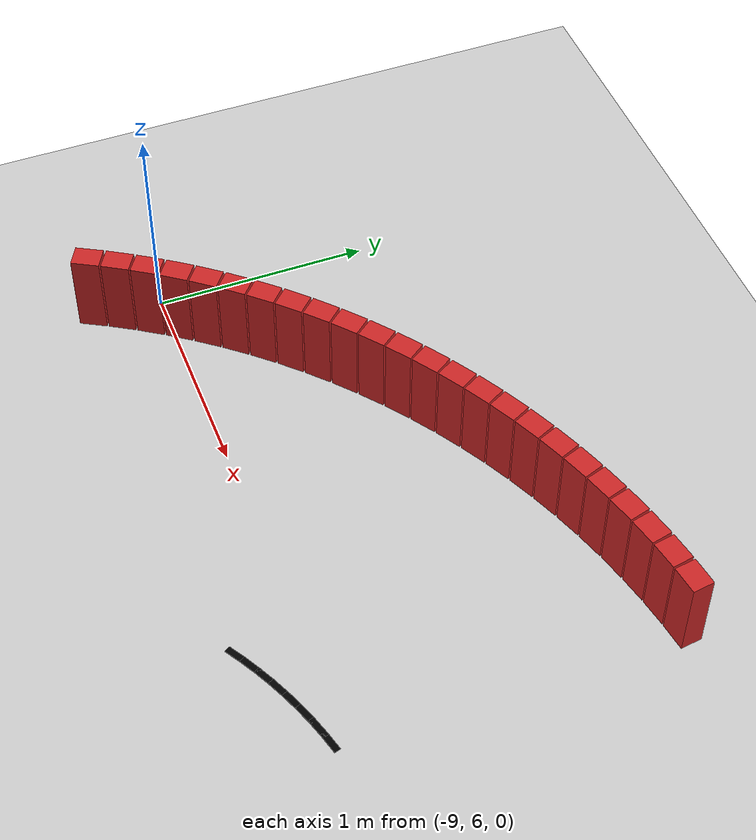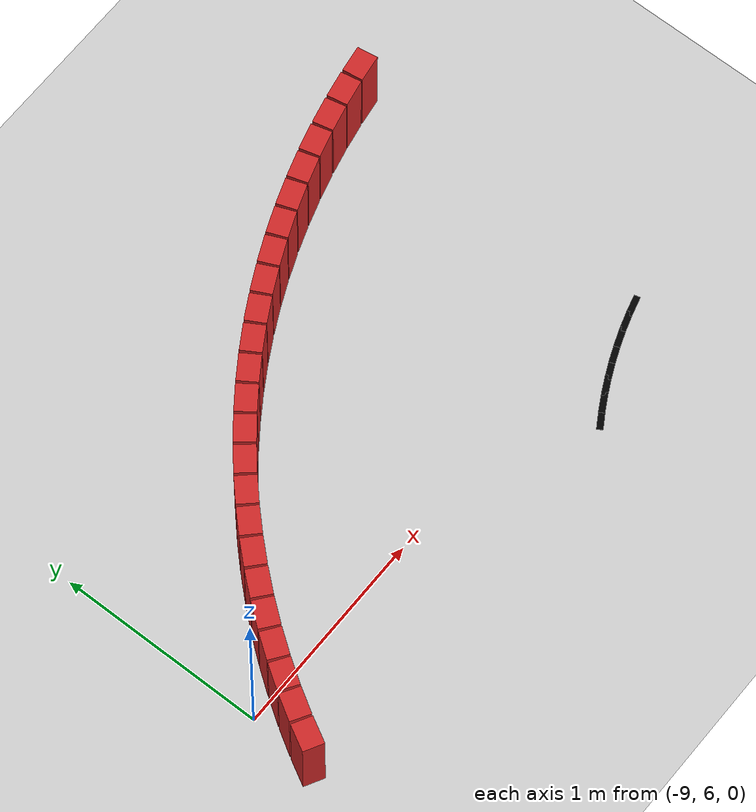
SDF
<sdf version="1.6">
 <world name="new_race_track">
  <include><uri>model://ground_plane</uri></include>
  <include><uri>model://sun</uri></include>
  <model name="race_track">
   <static>true</static>
   <link name="wall_link_787">
    <collision name="c"><geometry><box><size>0.1305 0.1 0.4</size></box></geometry></collision>
    <visual name="v">
     <geometry><box><size>0.1305 0.1 0.4</size></box></geometry>
     <material><ambient>0.8 0.15 0.15 1</ambient><diffuse>0.8 0.15 0.15 1</diffuse></material>
    </visual>
    <pose>-6.4538 7.4649 0.200 0 0 -3.0006</pose>
   </link>
   <link name="wall_link_788">
    <collision name="c"><geometry><box><size>0.1305 0.1 0.4</size></box></geometry></collision>
    <visual name="v">
     <geometry><box><size>0.1305 0.1 0.4</size></box></geometry>
     <material><ambient>0.8 0.15 0.15 1</ambient><diffuse>0.8 0.15 0.15 1</diffuse></material>
    </visual>
    <pose>-6.5929 7.4423 0.200 0 0 -2.9603</pose>
   </link>
   <link name="wall_link_789">
    <collision name="c"><geometry><box><size>0.1305 0.1 0.4</size></box></geometry></collision>
    <visual name="v">
     <geometry><box><size>0.1305 0.1 0.4</size></box></geometry>
     <material><ambient>0.8 0.15 0.15 1</ambient><diffuse>0.8 0.15 0.15 1</diffuse></material>
    </visual>
    <pose>-6.7310 7.4141 0.200 0 0 -2.9201</pose>
   </link>
   <link name="wall_link_790">
    <collision name="c"><geometry><box><size>0.1305 0.1 0.4</size></box></geometry></collision>
    <visual name="v">
     <geometry><box><size>0.1305 0.1 0.4</size></box></geometry>
     <material><ambient>0.8 0.15 0.15 1</ambient><diffuse>0.8 0.15 0.15 1</diffuse></material>
    </visual>
    <pose>-6.8678 7.3803 0.200 0 0 -2.8798</pose>
   </link>
   <link name="wall_link_791">
    <collision name="c"><geometry><box><size>0.1305 0.1 0.4</size></box></geometry></collision>
    <visual name="v">
     <geometry><box><size>0.1305 0.1 0.4</size></box></geometry>
     <material><ambient>0.8 0.15 0.15 1</ambient><diffuse>0.8 0.15 0.15 1</diffuse></material>
    </visual>
    <pose>-7.0032 7.3411 0.200 0 0 -2.8395</pose>
   </link>
   <link name="wall_link_792">
    <collision name="c"><geometry><box><size>0.1305 0.1 0.4</size></box></geometry></collision>
    <visual name="v">
     <geometry><box><size>0.1305 0.1 0.4</size></box></geometry>
     <material><ambient>0.8 0.15 0.15 1</ambient><diffuse>0.8 0.15 0.15 1</diffuse></material>
    </visual>
    <pose>-7.1369 7.2965 0.200 0 0 -2.7992</pose>
   </link>
   <link name="wall_link_793">
    <collision name="c"><geometry><box><size>0.1305 0.1 0.4</size></box></geometry></collision>
    <visual name="v">
     <geometry><box><size>0.1305 0.1 0.4</size></box></geometry>
     <material><ambient>0.8 0.15 0.15 1</ambient><diffuse>0.8 0.15 0.15 1</diffuse></material>
    </visual>
    <pose>-7.2687 7.2465 0.200 0 0 -2.7590</pose>
   </link>
   <link name="wall_link_794">
    <collision name="c"><geometry><box><size>0.1305 0.1 0.4</size></box></geometry></collision>
    <visual name="v">
     <geometry><box><size>0.1305 0.1 0.4</size></box></geometry>
     <material><ambient>0.8 0.15 0.15 1</ambient><diffuse>0.8 0.15 0.15 1</diffuse></material>
    </visual>
    <pose>-7.3984 7.1913 0.200 0 0 -2.7187</pose>
   </link>
   <link name="wall_link_795">
    <collision name="c"><geometry><box><size>0.1305 0.1 0.4</size></box></geometry></collision>
    <visual name="v">
     <geometry><box><size>0.1305 0.1 0.4</size></box></geometry>
     <material><ambient>0.8 0.15 0.15 1</ambient><diffuse>0.8 0.15 0.15 1</diffuse></material>
    </visual>
    <pose>-7.5257 7.1309 0.200 0 0 -2.6784</pose>
   </link>
   <link name="wall_link_796">
    <collision name="c"><geometry><box><size>0.1305 0.1 0.4</size></box></geometry></collision>
    <visual name="v">
     <geometry><box><size>0.1305 0.1 0.4</size></box></geometry>
     <material><ambient>0.8 0.15 0.15 1</ambient><diffuse>0.8 0.15 0.15 1</diffuse></material>
    </visual>
    <pose>-7.6505 7.0654 0.200 0 0 -2.6381</pose>
   </link>
   <link name="wall_link_797">
    <collision name="c"><geometry><box><size>0.1305 0.1 0.4</size></box></geometry></collision>
    <visual name="v">
     <geometry><box><size>0.1305 0.1 0.4</size></box></geometry>
     <material><ambient>0.8 0.15 0.15 1</ambient><diffuse>0.8 0.15 0.15 1</diffuse></material>
    </visual>
    <pose>-7.7725 6.9949 0.200 0 0 -2.5979</pose>
   </link>
   <link name="wall_link_798">
    <collision name="c"><geometry><box><size>0.1305 0.1 0.4</size></box></geometry></collision>
    <visual name="v">
     <geometry><box><size>0.1305 0.1 0.4</size></box></geometry>
     <material><ambient>0.8 0.15 0.15 1</ambient><diffuse>0.8 0.15 0.15 1</diffuse></material>
    </visual>
    <pose>-7.8917 6.9196 0.200 0 0 -2.5576</pose>
   </link>
   <link name="wall_link_799">
    <collision name="c"><geometry><box><size>0.1305 0.1 0.4</size></box></geometry></collision>
    <visual name="v">
     <geometry><box><size>0.1305 0.1 0.4</size></box></geometry>
     <material><ambient>0.8 0.15 0.15 1</ambient><diffuse>0.8 0.15 0.15 1</diffuse></material>
    </visual>
    <pose>-8.0077 6.8395 0.200 0 0 -2.5173</pose>
   </link>
   <link name="wall_link_800">
    <collision name="c"><geometry><box><size>0.1305 0.1 0.4</size></box></geometry></collision>
    <visual name="v">
     <geometry><box><size>0.1305 0.1 0.4</size></box></geometry>
     <material><ambient>0.8 0.15 0.15 1</ambient><diffuse>0.8 0.15 0.15 1</diffuse></material>
    </visual>
    <pose>-8.1203 6.7548 0.200 0 0 -2.4770</pose>
   </link>
   <link name="wall_link_801">
    <collision name="c"><geometry><box><size>0.1305 0.1 0.4</size></box></geometry></collision>
    <visual name="v">
     <geometry><box><size>0.1305 0.1 0.4</size></box></geometry>
     <material><ambient>0.8 0.15 0.15 1</ambient><diffuse>0.8 0.15 0.15 1</diffuse></material>
    </visual>
    <pose>-8.2295 6.6657 0.200 0 0 -2.4367</pose>
   </link>
   <link name="wall_link_802">
    <collision name="c"><geometry><box><size>0.1305 0.1 0.4</size></box></geometry></collision>
    <visual name="v">
     <geometry><box><size>0.1305 0.1 0.4</size></box></geometry>
     <material><ambient>0.8 0.15 0.15 1</ambient><diffuse>0.8 0.15 0.15 1</diffuse></material>
    </visual>
    <pose>-8.3350 6.5722 0.200 0 0 -2.3965</pose>
   </link>
   <link name="wall_link_803">
    <collision name="c"><geometry><box><size>0.1305 0.1 0.4</size></box></geometry></collision>
    <visual name="v">
     <geometry><box><size>0.1305 0.1 0.4</size></box></geometry>
     <material><ambient>0.8 0.15 0.15 1</ambient><diffuse>0.8 0.15 0.15 1</diffuse></material>
    </visual>
    <pose>-8.4367 6.4746 0.200 0 0 -2.3562</pose>
   </link>
   <link name="wall_link_804">
    <collision name="c"><geometry><box><size>0.1305 0.1 0.4</size></box></geometry></collision>
    <visual name="v">
     <geometry><box><size>0.1305 0.1 0.4</size></box></geometry>
     <material><ambient>0.8 0.15 0.15 1</ambient><diffuse>0.8 0.15 0.15 1</diffuse></material>
    </visual>
    <pose>-8.5343 6.3729 0.200 0 0 -2.3159</pose>
   </link>
   <link name="wall_link_805">
    <collision name="c"><geometry><box><size>0.1305 0.1 0.4</size></box></geometry></collision>
    <visual name="v">
     <geometry><box><size>0.1305 0.1 0.4</size></box></geometry>
     <material><ambient>0.8 0.15 0.15 1</ambient><diffuse>0.8 0.15 0.15 1</diffuse></material>
    </visual>
    <pose>-8.6278 6.2674 0.200 0 0 -2.2756</pose>
   </link>
   <link name="wall_link_806">
    <collision name="c"><geometry><box><size>0.1305 0.1 0.4</size></box></geometry></collision>
    <visual name="v">
     <geometry><box><size>0.1305 0.1 0.4</size></box></geometry>
     <material><ambient>0.8 0.15 0.15 1</ambient><diffuse>0.8 0.15 0.15 1</diffuse></material>
    </visual>
    <pose>-8.7169 6.1583 0.200 0 0 -2.2354</pose>
   </link>
   <link name="wall_link_807">
    <collision name="c"><geometry><box><size>0.1305 0.1 0.4</size></box></geometry></collision>
    <visual name="v">
     <geometry><box><size>0.1305 0.1 0.4</size></box></geometry>
     <material><ambient>0.8 0.15 0.15 1</ambient><diffuse>0.8 0.15 0.15 1</diffuse></material>
    </visual>
    <pose>-8.8016 6.0456 0.200 0 0 -2.1951</pose>
   </link>
   <link name="wall_link_808">
    <collision name="c"><geometry><box><size>0.1305 0.1 0.4</size></box></geometry></collision>
    <visual name="v">
     <geometry><box><size>0.1305 0.1 0.4</size></box></geometry>
     <material><ambient>0.8 0.15 0.15 1</ambient><diffuse>0.8 0.15 0.15 1</diffuse></material>
    </visual>
    <pose>-8.8816 5.9296 0.200 0 0 -2.1548</pose>
   </link>
   <link name="wall_link_809">
    <collision name="c"><geometry><box><size>0.1305 0.1 0.4</size></box></geometry></collision>
    <visual name="v">
     <geometry><box><size>0.1305 0.1 0.4</size></box></geometry>
     <material><ambient>0.8 0.15 0.15 1</ambient><diffuse>0.8 0.15 0.15 1</diffuse></material>
    </visual>
    <pose>-8.9570 5.8105 0.200 0 0 -2.1145</pose>
   </link>
   <link name="wall_link_810">
    <collision name="c"><geometry><box><size>0.1305 0.1 0.4</size></box></geometry></collision>
    <visual name="v">
     <geometry><box><size>0.1305 0.1 0.4</size></box></geometry>
     <material><ambient>0.8 0.15 0.15 1</ambient><diffuse>0.8 0.15 0.15 1</diffuse></material>
    </visual>
    <pose>-9.0274 5.6884 0.200 0 0 -2.0743</pose>
   </link>
   <link name="line_link_1524">
    <visual name="v">
     <geometry><box><size>0.1005 0.03 0.002</size></box></geometry>
     <material><ambient>0 0 0 1</ambient><diffuse>0 0 0 1</diffuse></material>
    </visual>
    <pose>-6.4796 5.9315 0.002 0 0 -2.8798</pose>
   </link>
   <link name="line_link_1525">
    <visual name="v">
     <geometry><box><size>0.1005 0.03 0.002</size></box></geometry>
     <material><ambient>0 0 0 1</ambient><diffuse>0 0 0 1</diffuse></material>
    </visual>
    <pose>-6.5570 5.9091 0.002 0 0 -2.8395</pose>
   </link>
   <link name="line_link_1526">
    <visual name="v">
     <geometry><box><size>0.1005 0.03 0.002</size></box></geometry>
     <material><ambient>0 0 0 1</ambient><diffuse>0 0 0 1</diffuse></material>
    </visual>
    <pose>-6.6333 5.8836 0.002 0 0 -2.7992</pose>
   </link>
   <link name="line_link_1527">
    <visual name="v">
     <geometry><box><size>0.1005 0.03 0.002</size></box></geometry>
     <material><ambient>0 0 0 1</ambient><diffuse>0 0 0 1</diffuse></material>
    </visual>
    <pose>-6.7086 5.8550 0.002 0 0 -2.7590</pose>
   </link>
   <link name="line_link_1528">
    <visual name="v">
     <geometry><box><size>0.1005 0.03 0.002</size></box></geometry>
     <material><ambient>0 0 0 1</ambient><diffuse>0 0 0 1</diffuse></material>
    </visual>
    <pose>-6.7827 5.8234 0.002 0 0 -2.7187</pose>
   </link>
   <link name="line_link_1529">
    <visual name="v">
     <geometry><box><size>0.1005 0.03 0.002</size></box></geometry>
     <material><ambient>0 0 0 1</ambient><diffuse>0 0 0 1</diffuse></material>
    </visual>
    <pose>-6.8555 5.7889 0.002 0 0 -2.6784</pose>
   </link>
   <link name="line_link_1530">
    <visual name="v">
     <geometry><box><size>0.1005 0.03 0.002</size></box></geometry>
     <material><ambient>0 0 0 1</ambient><diffuse>0 0 0 1</diffuse></material>
    </visual>
    <pose>-6.9268 5.7515 0.002 0 0 -2.6381</pose>
   </link>
   <link name="line_link_1531">
    <visual name="v">
     <geometry><box><size>0.1005 0.03 0.002</size></box></geometry>
     <material><ambient>0 0 0 1</ambient><diffuse>0 0 0 1</diffuse></material>
    </visual>
    <pose>-6.9965 5.7112 0.002 0 0 -2.5979</pose>
   </link>
  </model>
 </world>
</sdf>
